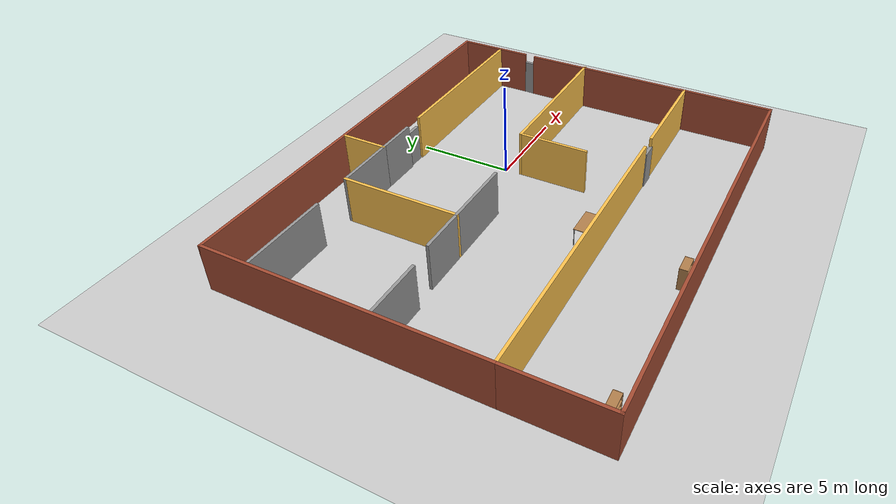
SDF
<sdf version="1.6">
 <world name="default">
  <model name="ground_plane">
   <static>1</static>
   <link name="link">
    <collision name="collision">
     <geometry><plane><normal>0 0 1</normal><size>100 100</size></plane></geometry>
     <surface>
      <contact><collide_bitmask>65535</collide_bitmask></contact>
      <friction><ode><mu>100</mu><mu2>50</mu2></ode></friction>
     </surface>
    </collision>
    <visual name="visual">
     <cast_shadows>0</cast_shadows>
     <geometry><plane><normal>0 0 1</normal><size>100 100</size></plane></geometry>
     <material>
      <script><uri>file://media/materials/scripts/gazebo.material</uri><name>Gazebo/Grey</name></script>
     </material>
    </visual>
   </link>
  </model>
  <model name="Building">
   <pose>-2.72776 -2.2826 0 0 -0 0</pose>
   <link name="Door_3">
    <collision name="Door_3_Collision">
     <geometry><box><size>0.9 0.17 2</size></box></geometry>
     <pose>0 0 1 0 -0 0</pose>
    </collision>
    <visual name="Door_3_Visual">
     <pose>0 0 1 0 -0 0</pose>
     <geometry><box><size>0.9 0.17 2</size></box></geometry>
     <material>
      <script><uri>file://media/materials/scripts/gazebo.material</uri><name>Gazebo/Grey</name></script>
     </material>
    </visual>
    <pose>5.0986 -4.70368 0 0 -0 0</pose>
   </link>
   <link name="Door_4">
    <collision name="Door_4_Collision">
     <geometry><box><size>0.9 0.17 2</size></box></geometry>
     <pose>0 0 1 0 -0 0</pose>
    </collision>
    <visual name="Door_4_Visual">
     <pose>0 0 1 0 -0 0</pose>
     <geometry><box><size>0.9 0.17 2</size></box></geometry>
     <material>
      <script><uri>file://media/materials/scripts/gazebo.material</uri><name>Gazebo/Grey</name></script>
     </material>
    </visual>
    <pose>11.1592 4.99783 0 0 -0 1.53265</pose>
   </link>
   <link name="Door_5">
    <collision name="Door_5_Collision">
     <geometry><box><size>0.9 0.17 2</size></box></geometry>
     <pose>0 0 1 0 -0 0</pose>
    </collision>
    <visual name="Door_5_Visual">
     <pose>0 0 1 0 -0 0</pose>
     <geometry><box><size>0.9 0.17 2</size></box></geometry>
     <material>
      <script><uri>file://media/materials/scripts/gazebo.material</uri><name>Gazebo/Grey</name></script>
     </material>
    </visual>
    <pose>1.26511 7.10354 0 0 -0 0</pose>
   </link>
   <link name="Wall_12">
    <collision name="Wall_12_Collision">
     <geometry><box><size>15.8309 0.15 2.5</size></box></geometry>
     <pose>0 0 1.25 0 -0 0</pose>
    </collision>
    <visual name="Wall_12_Visual">
     <pose>0 0 1.25 0 -0 0</pose>
     <geometry><box><size>15.8309 0.15 2.5</size></box></geometry>
     <material>
      <script><uri>file://media/materials/scripts/gazebo.material</uri><name>Gazebo/Grey</name></script>
      <ambient>1 0.764706 0.305882 1</ambient>
     </material>
     <meta><layer>0</layer></meta>
    </visual>
    <pose>-3.29355 -4.67266 0 0 -0 0</pose>
   </link>
   <link name="Wall_14">
    <collision name="Wall_14_Collision">
     <geometry><box><size>5.75 0.15 2.5</size></box></geometry>
     <pose>0 0 1.25 0 -0 0</pose>
    </collision>
    <visual name="Wall_14_Visual">
     <pose>0 0 1.25 0 -0 0</pose>
     <geometry><box><size>5.75 0.15 2.5</size></box></geometry>
     <material>
      <script><uri>file://media/materials/scripts/gazebo.material</uri><name>Gazebo/Grey</name></script>
      <ambient>1 0.764706 0.305882 1</ambient>
     </material>
     <meta><layer>0</layer></meta>
    </visual>
    <pose>8.31924 -4.67686 0 0 -0 0</pose>
   </link>
   <link name="Wall_15">
    <collision name="Wall_15_Collision">
     <geometry><box><size>9.5 0.15 2.5</size></box></geometry>
     <pose>0 0 1.25 0 -0 0</pose>
    </collision>
    <visual name="Wall_15_Visual">
     <pose>0 0 1.25 0 -0 0</pose>
     <geometry><box><size>9.5 0.15 2.5</size></box></geometry>
     <material>
      <script><uri>file://media/materials/scripts/gazebo.material</uri><name>Gazebo/Bricks</name></script>
      <ambient>1 1 1 1</ambient>
     </material>
     <meta><layer>0</layer></meta>
    </visual>
    <pose>11.1192 -0.001863 0 0 -0 1.5708</pose>
   </link>
   <link name="Wall_17">
    <collision name="Wall_17_Collision">
     <geometry><box><size>4.25 0.15 2.5</size></box></geometry>
     <pose>0 0 1.25 0 -0 0</pose>
    </collision>
    <visual name="Wall_17_Visual">
     <pose>0 0 1.25 0 -0 0</pose>
     <geometry><box><size>4.25 0.15 2.5</size></box></geometry>
     <material>
      <script><uri>file://media/materials/scripts/gazebo.material</uri><name>Gazebo/Bricks</name></script>
      <ambient>1 1 1 1</ambient>
     </material>
     <meta><layer>0</layer></meta>
    </visual>
    <pose>11.147 7.425 0 0 -0 1.5708</pose>
   </link>
   <link name="Wall_18">
    <collision name="Wall_18_Collision">
     <geometry><box><size>22.5 0.15 2.5</size></box></geometry>
     <pose>0 0 1.25 0 -0 0</pose>
    </collision>
    <visual name="Wall_18_Visual">
     <pose>0 0 1.25 0 -0 0</pose>
     <geometry><box><size>22.5 0.15 2.5</size></box></geometry>
     <material>
      <script><uri>file://media/materials/scripts/gazebo.material</uri><name>Gazebo/Bricks</name></script>
      <ambient>1 1 1 1</ambient>
     </material>
     <meta><layer>0</layer></meta>
    </visual>
    <pose>-0.027974 9.475 0 0 -0 3.14159</pose>
   </link>
   <link name="Wall_19">
    <collision name="Wall_19_Collision">
     <geometry><box><size>14.25 0.15 2.5</size></box></geometry>
     <pose>0 0 1.25 0 -0 0</pose>
    </collision>
    <visual name="Wall_19_Visual">
     <pose>0 0 1.25 0 -0 0</pose>
     <geometry><box><size>14.25 0.15 2.5</size></box></geometry>
     <material>
      <script><uri>file://media/materials/scripts/gazebo.material</uri><name>Gazebo/Bricks</name></script>
      <ambient>1 1 1 1</ambient>
     </material>
     <meta><layer>0</layer></meta>
    </visual>
    <pose>-11.203 2.425 0 0 0 -1.5708</pose>
   </link>
   <link name="Wall_21">
    <collision name="Wall_21_Collision">
     <geometry><box><size>9.25 0.15 2.5</size></box></geometry>
     <pose>0 0 1.25 0 -0 0</pose>
    </collision>
    <visual name="Wall_21_Visual">
     <pose>0 0 1.25 0 -0 0</pose>
     <geometry><box><size>9.25 0.15 2.5</size></box></geometry>
     <material>
      <script><uri>file://media/materials/scripts/gazebo.material</uri><name>Gazebo/Grey</name></script>
      <ambient>1 0.764706 0.305882 1</ambient>
     </material>
     <meta><layer>0</layer></meta>
    </visual>
    <pose>6.4174 7.03693 0 0 -0 3.14159</pose>
   </link>
   <link name="Wall_23">
    <collision name="Wall_23_Collision">
     <geometry><box><size>2.25 0.15 2.5</size></box></geometry>
     <pose>0 0 1.25 0 -0 0</pose>
    </collision>
    <visual name="Wall_23_Visual">
     <pose>0 0 1.25 0 -0 0</pose>
     <geometry><box><size>2.25 0.15 2.5</size></box></geometry>
     <material>
      <script><uri>file://media/materials/scripts/gazebo.material</uri><name>Gazebo/Grey</name></script>
      <ambient>1 1 1 1</ambient>
     </material>
     <meta><layer>0</layer></meta>
    </visual>
    <pose>-0.325021 7.02524 0 0 -0 3.14159</pose>
   </link>
   <link name="Wall_24">
    <collision name="Wall_24_Collision">
     <geometry><box><size>2.5 0.15 2.5</size></box></geometry>
     <pose>0 0 1.25 0 -0 0</pose>
    </collision>
    <visual name="Wall_24_Visual">
     <pose>0 0 1.25 0 -0 0</pose>
     <geometry><box><size>2.5 0.15 2.5</size></box></geometry>
     <material>
      <script><uri>file://media/materials/scripts/gazebo.material</uri><name>Gazebo/Grey</name></script>
      <ambient>1 0.764706 0.305882 1</ambient>
     </material>
     <meta><layer>0</layer></meta>
    </visual>
    <pose>-1.37502 8.20024 0 0 -0 1.5708</pose>
   </link>
   <link name="Wall_26">
    <collision name="Wall_26_Collision">
     <geometry><box><size>4.5 0.15 2.5</size></box></geometry>
     <pose>0 0 1.25 0 -0 0</pose>
    </collision>
    <visual name="Wall_26_Visual">
     <pose>0 0 1.25 0 -0 0</pose>
     <geometry><box><size>4.5 0.15 2.5</size></box></geometry>
     <material>
      <script><uri>file://media/materials/scripts/gazebo.material</uri><name>Gazebo/Grey</name></script>
      <ambient>1 1 1 1</ambient>
     </material>
     <meta><layer>0</layer></meta>
    </visual>
    <pose>-8.87259 6.94433 0 0 -0 0</pose>
   </link>
   <link name="Wall_28">
    <collision name="Wall_28_Collision">
     <geometry><box><size>3.25 0.15 2.5</size></box></geometry>
     <pose>0 0 1.25 0 -0 0</pose>
    </collision>
    <visual name="Wall_28_Visual">
     <pose>0 0 1.25 0 -0 0</pose>
     <geometry><box><size>3.25 0.15 2.5</size></box></geometry>
     <material>
      <script><uri>file://media/materials/scripts/gazebo.material</uri><name>Gazebo/Grey</name></script>
      <ambient>1 1 1 1</ambient>
     </material>
     <meta><layer>0</layer></meta>
    </visual>
    <pose>-2.92502 7.02524 0 0 -0 3.14159</pose>
   </link>
   <link name="Wall_29">
    <collision name="Wall_29_Collision">
     <geometry><box><size>6.25 0.15 2.5</size></box></geometry>
     <pose>0 0 1.25 0 -0 0</pose>
    </collision>
    <visual name="Wall_29_Visual">
     <pose>0 0 1.25 0 -0 0</pose>
     <geometry><box><size>6.25 0.15 2.5</size></box></geometry>
     <material>
      <script><uri>file://media/materials/scripts/gazebo.material</uri><name>Gazebo/Grey</name></script>
      <ambient>1 0.764706 0.305882 1</ambient>
     </material>
     <meta><layer>0</layer></meta>
    </visual>
    <pose>-4.47502 3.97524 0 0 0 -1.5708</pose>
   </link>
   <link name="Wall_30">
    <collision name="Wall_30_Collision">
     <geometry><box><size>3.75 0.15 2.5</size></box></geometry>
     <pose>0 0 1.25 0 -0 0</pose>
    </collision>
    <visual name="Wall_30_Visual">
     <pose>0 0 1.25 0 -0 0</pose>
     <geometry><box><size>3.75 0.15 2.5</size></box></geometry>
     <material>
      <script><uri>file://media/materials/scripts/gazebo.material</uri><name>Gazebo/Grey</name></script>
      <ambient>1 1 1 1</ambient>
     </material>
     <meta><layer>0</layer></meta>
    </visual>
    <pose>-2.67502 0.925244 0 0 -0 0</pose>
   </link>
   <link name="Wall_32">
    <collision name="Wall_32_Collision">
     <geometry><box><size>8.5 0.15 2.5</size></box></geometry>
     <pose>0 0 1.25 0 -0 0</pose>
    </collision>
    <visual name="Wall_32_Visual">
     <pose>0 0 1.25 0 -0 0</pose>
     <geometry><box><size>8.5 0.15 2.5</size></box></geometry>
     <material>
      <script><uri>file://media/materials/scripts/gazebo.material</uri><name>Gazebo/Grey</name></script>
      <ambient>1 0.764706 0.305882 1</ambient>
     </material>
     <meta><layer>0</layer></meta>
    </visual>
    <pose>7.02797 1.44237 0 0 -0 3.14159</pose>
   </link>
   <link name="Wall_33">
    <collision name="Wall_33_Collision">
     <geometry><box><size>3.75 0.15 2.5</size></box></geometry>
     <pose>0 0 1.25 0 -0 0</pose>
    </collision>
    <visual name="Wall_33_Visual">
     <pose>0 0 1.25 0 -0 0</pose>
     <geometry><box><size>3.75 0.15 2.5</size></box></geometry>
     <material>
      <script><uri>file://media/materials/scripts/gazebo.material</uri><name>Gazebo/Grey</name></script>
      <ambient>1 0.764706 0.305882 1</ambient>
     </material>
     <meta><layer>0</layer></meta>
    </visual>
    <pose>2.85297 -0.357625 0 0 0 -1.5708</pose>
   </link>
   <link name="Wall_35">
    <collision name="Wall_35_Collision">
     <geometry><box><size>2.5 0.15 2.5</size></box></geometry>
     <pose>0 0 1.25 0 -0 0</pose>
    </collision>
    <visual name="Wall_35_Visual">
     <pose>0 0 1.25 0 -0 0</pose>
     <geometry><box><size>2.5 0.15 2.5</size></box></geometry>
     <material>
      <script><uri>file://media/materials/scripts/gazebo.material</uri><name>Gazebo/Grey</name></script>
      <ambient>1 1 1 1</ambient>
     </material>
     <meta><layer>0</layer></meta>
    </visual>
    <pose>-5.65002 0.925244 0 0 -0 3.14159</pose>
   </link>
   <link name="Wall_37">
    <collision name="Wall_37_Collision">
     <geometry><box><size>3 0.15 2.5</size></box></geometry>
     <pose>0 0 1.25 0 -0 0</pose>
    </collision>
    <visual name="Wall_37_Visual">
     <pose>0 0 1.25 0 -0 0</pose>
     <geometry><box><size>3 0.15 2.5</size></box></geometry>
     <material>
      <script><uri>file://media/materials/scripts/gazebo.material</uri><name>Gazebo/Grey</name></script>
      <ambient>1 1 1 1</ambient>
     </material>
     <meta><layer>0</layer></meta>
    </visual>
    <pose>-9.66305 0.75463 0 0 -0 0</pose>
   </link>
   <link name="Wall_39">
    <collision name="Wall_39_Collision">
     <geometry><box><size>5 0.15 2.5</size></box></geometry>
     <pose>0 0 1.25 0 -0 0</pose>
    </collision>
    <visual name="Wall_39_Visual">
     <pose>0 0 1.25 0 -0 0</pose>
     <geometry><box><size>5 0.15 2.5</size></box></geometry>
     <material>
      <script><uri>file://media/materials/scripts/gazebo.material</uri><name>Gazebo/Bricks</name></script>
      <ambient>1 1 1 1</ambient>
     </material>
     <meta><layer>0</layer></meta>
    </visual>
    <pose>-11.203 -7.05 0 0 0 -1.5708</pose>
   </link>
   <link name="Wall_40">
    <collision name="Wall_40_Collision">
     <geometry><box><size>22.5 0.15 2.5</size></box></geometry>
     <pose>0 0 1.25 0 -0 0</pose>
    </collision>
    <visual name="Wall_40_Visual">
     <pose>0 0 1.25 0 -0 0</pose>
     <geometry><box><size>22.5 0.15 2.5</size></box></geometry>
     <material>
      <script><uri>file://media/materials/scripts/gazebo.material</uri><name>Gazebo/Bricks</name></script>
      <ambient>1 1 1 1</ambient>
     </material>
     <meta><layer>0</layer></meta>
    </visual>
    <pose>-0.027974 -9.475 0 0 -0 0</pose>
   </link>
   <link name="Wall_41">
    <collision name="Wall_41_Collision">
     <geometry><box><size>5.25 0.15 2.5</size></box></geometry>
     <pose>0 0 1.25 0 -0 0</pose>
    </collision>
    <visual name="Wall_41_Visual">
     <pose>0 0 1.25 0 -0 0</pose>
     <geometry><box><size>5.25 0.15 2.5</size></box></geometry>
     <material>
      <script><uri>file://media/materials/scripts/gazebo.material</uri><name>Gazebo/Bricks</name></script>
      <ambient>1 1 1 1</ambient>
     </material>
     <meta><layer>0</layer></meta>
    </visual>
    <pose>11.147 -6.925 0 0 -0 1.5708</pose>
   </link>
   <static>1</static>
  </model>
  <model name="cabinet_0">
   <static>1</static>
   <link name="cabinet_bottom_plate">
    <inertial>
     <pose>0 0 -1 0 -0 0</pose>
     <inertia><ixx>2.05</ixx><ixy>0</ixy><ixz>0</ixz><iyy>2.05</iyy><iyz>0</iyz><izz>2.05</izz></inertia>
     <mass>25</mass>
    </inertial>
    <collision name="cabinet_bottom_plate_geom">
     <pose>0 0 0.01 0 -0 0</pose>
     <geometry><box><size>0.45 0.45 0.02</size></box></geometry>
    </collision>
    <visual name="cabinet_bottom_plate_geom_visual">
     <pose>0 0 0.01 0 -0 0</pose>
     <geometry><box><size>0.45 0.45 0.02</size></box></geometry>
     <material>
      <script><uri>file://media/materials/scripts/gazebo.material</uri><name>Gazebo/Wood</name></script>
     </material>
    </visual>
    <collision name="cabinet_bottom_plate_geom_cabinet_back_plate">
     <pose>0.235 0 0.51 0 -0 0</pose>
     <geometry><box><size>0.02 0.45 1.02</size></box></geometry>
    </collision>
    <visual name="cabinet_bottom_plate_geom_cabinet_back_plate_visual">
     <pose>0.235 0 0.51 0 -0 0</pose>
     <geometry><box><size>0.02 0.45 1.02</size></box></geometry>
     <material>
      <script><uri>file://media/materials/scripts/gazebo.material</uri><name>Gazebo/Wood</name></script>
     </material>
    </visual>
    <collision name="cabinet_bottom_plate_geom_cabinet_left_plate">
     <pose>0 0.235 0.51 0 -0 0</pose>
     <geometry><box><size>0.45 0.02 1.02</size></box></geometry>
    </collision>
    <visual name="cabinet_bottom_plate_geom_cabinet_left_plate_visual">
     <pose>0 0.235 0.51 0 -0 0</pose>
     <geometry><box><size>0.45 0.02 1.02</size></box></geometry>
     <material>
      <script><uri>file://media/materials/scripts/gazebo.material</uri><name>Gazebo/Wood</name></script>
     </material>
    </visual>
    <collision name="cabinet_bottom_plate_geom_cabinet_middle_plate">
     <pose>0 0 0.51 0 -0 0</pose>
     <geometry><box><size>0.45 0.45 0.02</size></box></geometry>
    </collision>
    <visual name="cabinet_bottom_plate_geom_cabinet_middle_plate_visual">
     <pose>0 0 0.51 0 -0 0</pose>
     <geometry><box><size>0.45 0.45 0.02</size></box></geometry>
     <material>
      <script><uri>file://media/materials/scripts/gazebo.material</uri><name>Gazebo/Wood</name></script>
     </material>
    </visual>
    <collision name="cabinet_bottom_plate_geom_cabinet_right_plate">
     <pose>0 -0.235 0.51 0 -0 0</pose>
     <geometry><box><size>0.45 0.02 1.02</size></box></geometry>
    </collision>
    <visual name="cabinet_bottom_plate_geom_cabinet_right_plate_visual">
     <pose>0 -0.235 0.51 0 -0 0</pose>
     <geometry><box><size>0.45 0.02 1.02</size></box></geometry>
     <material>
      <script><uri>file://media/materials/scripts/gazebo.material</uri><name>Gazebo/Wood</name></script>
     </material>
    </visual>
    <collision name="cabinet_bottom_plate_geom_cabinet_top_plate">
     <pose>0 0 1.01 0 -0 0</pose>
     <geometry><box><size>0.45 0.45 0.02</size></box></geometry>
    </collision>
    <visual name="cabinet_bottom_plate_geom_cabinet_top_plate_visual">
     <pose>0 0 1.01 0 -0 0</pose>
     <geometry><box><size>0.45 0.45 0.02</size></box></geometry>
     <material>
      <script><uri>file://media/materials/scripts/gazebo.material</uri><name>Gazebo/Wood</name></script>
     </material>
    </visual>
   </link>
   <pose>-13.5727 6.63418 0 0 -0 0</pose>
  </model>
  <model name="cabinet_1">
   <static>1</static>
   <link name="cabinet_bottom_plate">
    <inertial>
     <pose>0 0 -1 0 -0 0</pose>
     <inertia><ixx>2.05</ixx><ixy>0</ixy><ixz>0</ixz><iyy>2.05</iyy><iyz>0</iyz><izz>2.05</izz></inertia>
     <mass>25</mass>
    </inertial>
    <collision name="cabinet_bottom_plate_geom">
     <pose>0 0 0.01 0 -0 0</pose>
     <geometry><box><size>0.45 0.45 0.02</size></box></geometry>
    </collision>
    <visual name="cabinet_bottom_plate_geom_visual">
     <pose>0 0 0.01 0 -0 0</pose>
     <geometry><box><size>0.45 0.45 0.02</size></box></geometry>
     <material>
      <script><uri>file://media/materials/scripts/gazebo.material</uri><name>Gazebo/Wood</name></script>
     </material>
    </visual>
    <collision name="cabinet_bottom_plate_geom_cabinet_back_plate">
     <pose>0.235 0 0.51 0 -0 0</pose>
     <geometry><box><size>0.02 0.45 1.02</size></box></geometry>
    </collision>
    <visual name="cabinet_bottom_plate_geom_cabinet_back_plate_visual">
     <pose>0.235 0 0.51 0 -0 0</pose>
     <geometry><box><size>0.02 0.45 1.02</size></box></geometry>
     <material>
      <script><uri>file://media/materials/scripts/gazebo.material</uri><name>Gazebo/Wood</name></script>
     </material>
    </visual>
    <collision name="cabinet_bottom_plate_geom_cabinet_left_plate">
     <pose>0 0.235 0.51 0 -0 0</pose>
     <geometry><box><size>0.45 0.02 1.02</size></box></geometry>
    </collision>
    <visual name="cabinet_bottom_plate_geom_cabinet_left_plate_visual">
     <pose>0 0.235 0.51 0 -0 0</pose>
     <geometry><box><size>0.45 0.02 1.02</size></box></geometry>
     <material>
      <script><uri>file://media/materials/scripts/gazebo.material</uri><name>Gazebo/Wood</name></script>
     </material>
    </visual>
    <collision name="cabinet_bottom_plate_geom_cabinet_middle_plate">
     <pose>0 0 0.51 0 -0 0</pose>
     <geometry><box><size>0.45 0.45 0.02</size></box></geometry>
    </collision>
    <visual name="cabinet_bottom_plate_geom_cabinet_middle_plate_visual">
     <pose>0 0 0.51 0 -0 0</pose>
     <geometry><box><size>0.45 0.45 0.02</size></box></geometry>
     <material>
      <script><uri>file://media/materials/scripts/gazebo.material</uri><name>Gazebo/Wood</name></script>
     </material>
    </visual>
    <collision name="cabinet_bottom_plate_geom_cabinet_right_plate">
     <pose>0 -0.235 0.51 0 -0 0</pose>
     <geometry><box><size>0.45 0.02 1.02</size></box></geometry>
    </collision>
    <visual name="cabinet_bottom_plate_geom_cabinet_right_plate_visual">
     <pose>0 -0.235 0.51 0 -0 0</pose>
     <geometry><box><size>0.45 0.02 1.02</size></box></geometry>
     <material>
      <script><uri>file://media/materials/scripts/gazebo.material</uri><name>Gazebo/Wood</name></script>
     </material>
    </visual>
    <collision name="cabinet_bottom_plate_geom_cabinet_top_plate">
     <pose>0 0 1.01 0 -0 0</pose>
     <geometry><box><size>0.45 0.45 0.02</size></box></geometry>
    </collision>
    <visual name="cabinet_bottom_plate_geom_cabinet_top_plate_visual">
     <pose>0 0 1.01 0 -0 0</pose>
     <geometry><box><size>0.45 0.45 0.02</size></box></geometry>
     <material>
      <script><uri>file://media/materials/scripts/gazebo.material</uri><name>Gazebo/Wood</name></script>
     </material>
    </visual>
   </link>
   <pose>-13.3634 -0.780931 0 0 -0 0</pose>
  </model>
  <model name="bookshelf_0">
   <static>1</static>
   <link name="link">
    <inertial><mass>1</mass></inertial>
    <collision name="back">
     <pose>0 0.005 0.6 0 -0 0</pose>
     <geometry><box><size>0.9 0.01 1.2</size></box></geometry>
    </collision>
    <visual name="visual1">
     <pose>0 0.005 0.6 0 -0 0</pose>
     <geometry><box><size>0.9 0.01 1.2</size></box></geometry>
     <material>
      <script><uri>file://media/materials/scripts/gazebo.material</uri><name>Gazebo/Wood</name></script>
     </material>
    </visual>
    <collision name="left_side">
     <pose>0.45 -0.195 0.6 0 -0 0</pose>
     <geometry><box><size>0.02 0.4 1.2</size></box></geometry>
    </collision>
    <visual name="visual2">
     <pose>0.45 -0.195 0.6 0 -0 0</pose>
     <geometry><box><size>0.02 0.4 1.2</size></box></geometry>
     <material>
      <script><uri>file://media/materials/scripts/gazebo.material</uri><name>Gazebo/Wood</name></script>
     </material>
    </visual>
    <collision name="right_side">
     <pose>-0.45 -0.195 0.6 0 -0 0</pose>
     <geometry><box><size>0.02 0.4 1.2</size></box></geometry>
    </collision>
    <visual name="visual3">
     <pose>-0.45 -0.195 0.6 0 -0 0</pose>
     <geometry><box><size>0.02 0.4 1.2</size></box></geometry>
     <material>
      <script><uri>file://media/materials/scripts/gazebo.material</uri><name>Gazebo/Wood</name></script>
     </material>
    </visual>
    <collision name="bottom">
     <pose>0 -0.195 0.03 0 -0 0</pose>
     <geometry><box><size>0.88 0.4 0.06</size></box></geometry>
    </collision>
    <visual name="visual4">
     <pose>0 -0.195 0.03 0 -0 0</pose>
     <geometry><box><size>0.88 0.4 0.06</size></box></geometry>
     <material>
      <script><uri>file://media/materials/scripts/gazebo.material</uri><name>Gazebo/Wood</name></script>
     </material>
    </visual>
    <collision name="top">
     <pose>0 -0.195 1.19 0 -0 0</pose>
     <geometry><box><size>0.88 0.4 0.02</size></box></geometry>
    </collision>
    <visual name="visual5">
     <pose>0 -0.195 1.19 0 -0 0</pose>
     <geometry><box><size>0.88 0.4 0.02</size></box></geometry>
     <material>
      <script><uri>file://media/materials/scripts/gazebo.material</uri><name>Gazebo/Wood</name></script>
     </material>
    </visual>
    <collision name="low_shelf">
     <pose>0 -0.195 0.43 0 -0 0</pose>
     <geometry><box><size>0.88 0.4 0.02</size></box></geometry>
    </collision>
    <visual name="visual6">
     <pose>0 -0.195 0.43 0 -0 0</pose>
     <geometry><box><size>0.88 0.4 0.02</size></box></geometry>
     <material>
      <script><uri>file://media/materials/scripts/gazebo.material</uri><name>Gazebo/Wood</name></script>
     </material>
    </visual>
    <collision name="high_shelf">
     <pose>0 -0.195 0.8 0 -0 0</pose>
     <geometry><box><size>0.88 0.4 0.02</size></box></geometry>
    </collision>
    <visual name="visual7">
     <pose>0 -0.195 0.8 0 -0 0</pose>
     <geometry><box><size>0.88 0.4 0.02</size></box></geometry>
     <material>
      <script><uri>file://media/materials/scripts/gazebo.material</uri><name>Gazebo/Wood</name></script>
     </material>
    </visual>
   </link>
   <pose>-12.8596 -6.38552 0 0 -0 0</pose>
  </model>
  <model name="bookshelf_1">
   <static>1</static>
   <link name="link">
    <inertial><mass>1</mass></inertial>
    <collision name="back">
     <pose>0 0.005 0.6 0 -0 0</pose>
     <geometry><box><size>0.9 0.01 1.2</size></box></geometry>
    </collision>
    <visual name="visual1">
     <pose>0 0.005 0.6 0 -0 0</pose>
     <geometry><box><size>0.9 0.01 1.2</size></box></geometry>
     <material>
      <script><uri>file://media/materials/scripts/gazebo.material</uri><name>Gazebo/Wood</name></script>
     </material>
    </visual>
    <collision name="left_side">
     <pose>0.45 -0.195 0.6 0 -0 0</pose>
     <geometry><box><size>0.02 0.4 1.2</size></box></geometry>
    </collision>
    <visual name="visual2">
     <pose>0.45 -0.195 0.6 0 -0 0</pose>
     <geometry><box><size>0.02 0.4 1.2</size></box></geometry>
     <material>
      <script><uri>file://media/materials/scripts/gazebo.material</uri><name>Gazebo/Wood</name></script>
     </material>
    </visual>
    <collision name="right_side">
     <pose>-0.45 -0.195 0.6 0 -0 0</pose>
     <geometry><box><size>0.02 0.4 1.2</size></box></geometry>
    </collision>
    <visual name="visual3">
     <pose>-0.45 -0.195 0.6 0 -0 0</pose>
     <geometry><box><size>0.02 0.4 1.2</size></box></geometry>
     <material>
      <script><uri>file://media/materials/scripts/gazebo.material</uri><name>Gazebo/Wood</name></script>
     </material>
    </visual>
    <collision name="bottom">
     <pose>0 -0.195 0.03 0 -0 0</pose>
     <geometry><box><size>0.88 0.4 0.06</size></box></geometry>
    </collision>
    <visual name="visual4">
     <pose>0 -0.195 0.03 0 -0 0</pose>
     <geometry><box><size>0.88 0.4 0.06</size></box></geometry>
     <material>
      <script><uri>file://media/materials/scripts/gazebo.material</uri><name>Gazebo/Wood</name></script>
     </material>
    </visual>
    <collision name="top">
     <pose>0 -0.195 1.19 0 -0 0</pose>
     <geometry><box><size>0.88 0.4 0.02</size></box></geometry>
    </collision>
    <visual name="visual5">
     <pose>0 -0.195 1.19 0 -0 0</pose>
     <geometry><box><size>0.88 0.4 0.02</size></box></geometry>
     <material>
      <script><uri>file://media/materials/scripts/gazebo.material</uri><name>Gazebo/Wood</name></script>
     </material>
    </visual>
    <collision name="low_shelf">
     <pose>0 -0.195 0.43 0 -0 0</pose>
     <geometry><box><size>0.88 0.4 0.02</size></box></geometry>
    </collision>
    <visual name="visual6">
     <pose>0 -0.195 0.43 0 -0 0</pose>
     <geometry><box><size>0.88 0.4 0.02</size></box></geometry>
     <material>
      <script><uri>file://media/materials/scripts/gazebo.material</uri><name>Gazebo/Wood</name></script>
     </material>
    </visual>
    <collision name="high_shelf">
     <pose>0 -0.195 0.8 0 -0 0</pose>
     <geometry><box><size>0.88 0.4 0.02</size></box></geometry>
    </collision>
    <visual name="visual7">
     <pose>0 -0.195 0.8 0 -0 0</pose>
     <geometry><box><size>0.88 0.4 0.02</size></box></geometry>
     <material>
      <script><uri>file://media/materials/scripts/gazebo.material</uri><name>Gazebo/Wood</name></script>
     </material>
    </visual>
   </link>
   <pose>-12.566 -10.8113 0 0 -0 0</pose>
  </model>
  <model name="bookshelf_2">
   <static>1</static>
   <link name="link">
    <inertial><mass>1</mass></inertial>
    <collision name="back">
     <pose>0 0.005 0.6 0 -0 0</pose>
     <geometry><box><size>0.9 0.01 1.2</size></box></geometry>
    </collision>
    <visual name="visual1">
     <pose>0 0.005 0.6 0 -0 0</pose>
     <geometry><box><size>0.9 0.01 1.2</size></box></geometry>
     <material>
      <script><uri>file://media/materials/scripts/gazebo.material</uri><name>Gazebo/Wood</name></script>
     </material>
    </visual>
    <collision name="left_side">
     <pose>0.45 -0.195 0.6 0 -0 0</pose>
     <geometry><box><size>0.02 0.4 1.2</size></box></geometry>
    </collision>
    <visual name="visual2">
     <pose>0.45 -0.195 0.6 0 -0 0</pose>
     <geometry><box><size>0.02 0.4 1.2</size></box></geometry>
     <material>
      <script><uri>file://media/materials/scripts/gazebo.material</uri><name>Gazebo/Wood</name></script>
     </material>
    </visual>
    <collision name="right_side">
     <pose>-0.45 -0.195 0.6 0 -0 0</pose>
     <geometry><box><size>0.02 0.4 1.2</size></box></geometry>
    </collision>
    <visual name="visual3">
     <pose>-0.45 -0.195 0.6 0 -0 0</pose>
     <geometry><box><size>0.02 0.4 1.2</size></box></geometry>
     <material>
      <script><uri>file://media/materials/scripts/gazebo.material</uri><name>Gazebo/Wood</name></script>
     </material>
    </visual>
    <collision name="bottom">
     <pose>0 -0.195 0.03 0 -0 0</pose>
     <geometry><box><size>0.88 0.4 0.06</size></box></geometry>
    </collision>
    <visual name="visual4">
     <pose>0 -0.195 0.03 0 -0 0</pose>
     <geometry><box><size>0.88 0.4 0.06</size></box></geometry>
     <material>
      <script><uri>file://media/materials/scripts/gazebo.material</uri><name>Gazebo/Wood</name></script>
     </material>
    </visual>
    <collision name="top">
     <pose>0 -0.195 1.19 0 -0 0</pose>
     <geometry><box><size>0.88 0.4 0.02</size></box></geometry>
    </collision>
    <visual name="visual5">
     <pose>0 -0.195 1.19 0 -0 0</pose>
     <geometry><box><size>0.88 0.4 0.02</size></box></geometry>
     <material>
      <script><uri>file://media/materials/scripts/gazebo.material</uri><name>Gazebo/Wood</name></script>
     </material>
    </visual>
    <collision name="low_shelf">
     <pose>0 -0.195 0.43 0 -0 0</pose>
     <geometry><box><size>0.88 0.4 0.02</size></box></geometry>
    </collision>
    <visual name="visual6">
     <pose>0 -0.195 0.43 0 -0 0</pose>
     <geometry><box><size>0.88 0.4 0.02</size></box></geometry>
     <material>
      <script><uri>file://media/materials/scripts/gazebo.material</uri><name>Gazebo/Wood</name></script>
     </material>
    </visual>
    <collision name="high_shelf">
     <pose>0 -0.195 0.8 0 -0 0</pose>
     <geometry><box><size>0.88 0.4 0.02</size></box></geometry>
    </collision>
    <visual name="visual7">
     <pose>0 -0.195 0.8 0 -0 0</pose>
     <geometry><box><size>0.88 0.4 0.02</size></box></geometry>
     <material>
      <script><uri>file://media/materials/scripts/gazebo.material</uri><name>Gazebo/Wood</name></script>
     </material>
    </visual>
   </link>
   <pose>-4.27231 -10.9563 0 0 -0 0</pose>
  </model>
  <model name="bookshelf_5">
   <static>1</static>
   <link name="link">
    <inertial><mass>1</mass></inertial>
    <collision name="back">
     <pose>0 0.005 0.6 0 -0 0</pose>
     <geometry><box><size>0.9 0.01 1.2</size></box></geometry>
    </collision>
    <visual name="visual1">
     <pose>0 0.005 0.6 0 -0 0</pose>
     <geometry><box><size>0.9 0.01 1.2</size></box></geometry>
     <material>
      <script><uri>file://media/materials/scripts/gazebo.material</uri><name>Gazebo/Wood</name></script>
     </material>
    </visual>
    <collision name="left_side">
     <pose>0.45 -0.195 0.6 0 -0 0</pose>
     <geometry><box><size>0.02 0.4 1.2</size></box></geometry>
    </collision>
    <visual name="visual2">
     <pose>0.45 -0.195 0.6 0 -0 0</pose>
     <geometry><box><size>0.02 0.4 1.2</size></box></geometry>
     <material>
      <script><uri>file://media/materials/scripts/gazebo.material</uri><name>Gazebo/Wood</name></script>
     </material>
    </visual>
    <collision name="right_side">
     <pose>-0.45 -0.195 0.6 0 -0 0</pose>
     <geometry><box><size>0.02 0.4 1.2</size></box></geometry>
    </collision>
    <visual name="visual3">
     <pose>-0.45 -0.195 0.6 0 -0 0</pose>
     <geometry><box><size>0.02 0.4 1.2</size></box></geometry>
     <material>
      <script><uri>file://media/materials/scripts/gazebo.material</uri><name>Gazebo/Wood</name></script>
     </material>
    </visual>
    <collision name="bottom">
     <pose>0 -0.195 0.03 0 -0 0</pose>
     <geometry><box><size>0.88 0.4 0.06</size></box></geometry>
    </collision>
    <visual name="visual4">
     <pose>0 -0.195 0.03 0 -0 0</pose>
     <geometry><box><size>0.88 0.4 0.06</size></box></geometry>
     <material>
      <script><uri>file://media/materials/scripts/gazebo.material</uri><name>Gazebo/Wood</name></script>
     </material>
    </visual>
    <collision name="top">
     <pose>0 -0.195 1.19 0 -0 0</pose>
     <geometry><box><size>0.88 0.4 0.02</size></box></geometry>
    </collision>
    <visual name="visual5">
     <pose>0 -0.195 1.19 0 -0 0</pose>
     <geometry><box><size>0.88 0.4 0.02</size></box></geometry>
     <material>
      <script><uri>file://media/materials/scripts/gazebo.material</uri><name>Gazebo/Wood</name></script>
     </material>
    </visual>
    <collision name="low_shelf">
     <pose>0 -0.195 0.43 0 -0 0</pose>
     <geometry><box><size>0.88 0.4 0.02</size></box></geometry>
    </collision>
    <visual name="visual6">
     <pose>0 -0.195 0.43 0 -0 0</pose>
     <geometry><box><size>0.88 0.4 0.02</size></box></geometry>
     <material>
      <script><uri>file://media/materials/scripts/gazebo.material</uri><name>Gazebo/Wood</name></script>
     </material>
    </visual>
    <collision name="high_shelf">
     <pose>0 -0.195 0.8 0 -0 0</pose>
     <geometry><box><size>0.88 0.4 0.02</size></box></geometry>
    </collision>
    <visual name="visual7">
     <pose>0 -0.195 0.8 0 -0 0</pose>
     <geometry><box><size>0.88 0.4 0.02</size></box></geometry>
     <material>
      <script><uri>file://media/materials/scripts/gazebo.material</uri><name>Gazebo/Wood</name></script>
     </material>
    </visual>
   </link>
   <pose>-3.048 6.9414 0 0 -0 0</pose>
  </model>
  <model name="table_1">
   <static>1</static>
   <link name="link">
    <collision name="surface">
     <pose>0 0 1 0 -0 0</pose>
     <geometry><box><size>1.5 0.8 0.03</size></box></geometry>
     <surface><friction><ode><mu>0.6</mu><mu2>0.6</mu2></ode></friction></surface>
    </collision>
    <visual name="visual1">
     <pose>0 0 1 0 -0 0</pose>
     <geometry><box><size>1.5 0.8 0.03</size></box></geometry>
     <material>
      <script><uri>file://media/materials/scripts/gazebo.material</uri><name>Gazebo/Wood</name></script>
     </material>
    </visual>
    <collision name="front_left_leg">
     <pose>0.68 0.38 0.5 0 -0 0</pose>
     <geometry><cylinder><radius>0.02</radius><length>1</length></cylinder></geometry>
    </collision>
    <visual name="front_left_leg">
     <pose>0.68 0.38 0.5 0 -0 0</pose>
     <geometry><cylinder><radius>0.02</radius><length>1</length></cylinder></geometry>
     <material>
      <script><uri>file://media/materials/scripts/gazebo.material</uri><name>Gazebo/Grey</name></script>
     </material>
    </visual>
    <collision name="front_right_leg">
     <pose>0.68 -0.38 0.5 0 -0 0</pose>
     <geometry><cylinder><radius>0.02</radius><length>1</length></cylinder></geometry>
    </collision>
    <visual name="front_right_leg">
     <pose>0.68 -0.38 0.5 0 -0 0</pose>
     <geometry><cylinder><radius>0.02</radius><length>1</length></cylinder></geometry>
     <material>
      <script><uri>file://media/materials/scripts/gazebo.material</uri><name>Gazebo/Grey</name></script>
     </material>
    </visual>
    <collision name="back_right_leg">
     <pose>-0.68 -0.38 0.5 0 -0 0</pose>
     <geometry><cylinder><radius>0.02</radius><length>1</length></cylinder></geometry>
    </collision>
    <visual name="back_right_leg">
     <pose>-0.68 -0.38 0.5 0 -0 0</pose>
     <geometry><cylinder><radius>0.02</radius><length>1</length></cylinder></geometry>
     <material>
      <script><uri>file://media/materials/scripts/gazebo.material</uri><name>Gazebo/Grey</name></script>
     </material>
    </visual>
    <collision name="back_left_leg">
     <pose>-0.68 0.38 0.5 0 -0 0</pose>
     <geometry><cylinder><radius>0.02</radius><length>1</length></cylinder></geometry>
    </collision>
    <visual name="back_left_leg">
     <pose>-0.68 0.38 0.5 0 -0 0</pose>
     <geometry><cylinder><radius>0.02</radius><length>1</length></cylinder></geometry>
     <material>
      <script><uri>file://media/materials/scripts/gazebo.material</uri><name>Gazebo/Grey</name></script>
     </material>
    </visual>
   </link>
   <pose>-3.34407 -6.10322 0 0 -0 0</pose>
  </model>
 </world>
</sdf>
